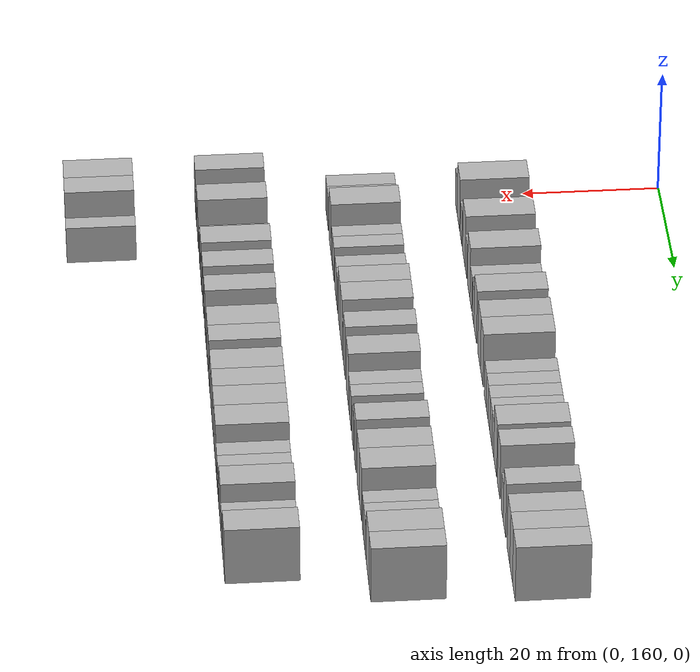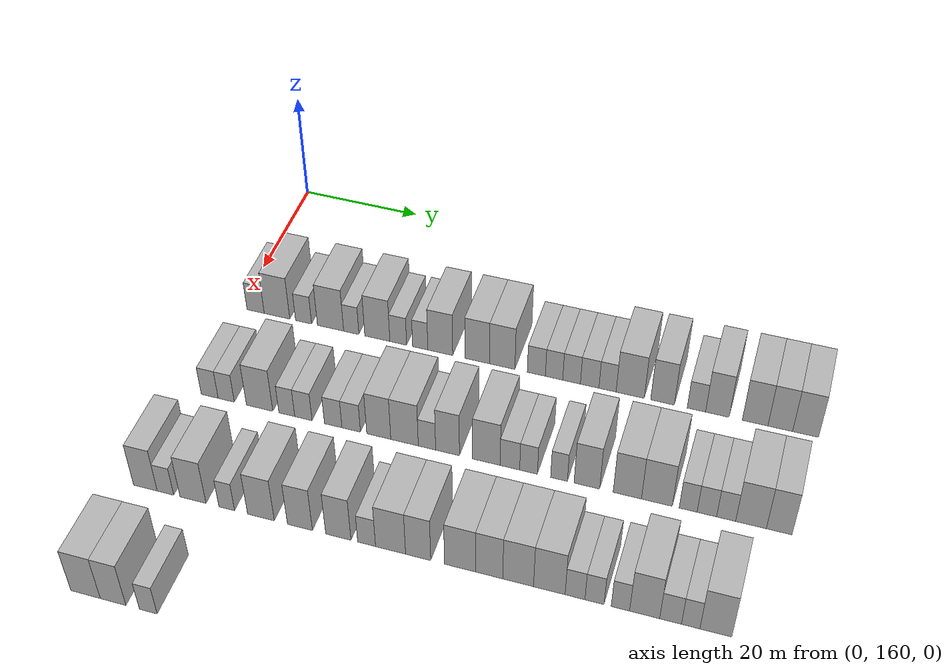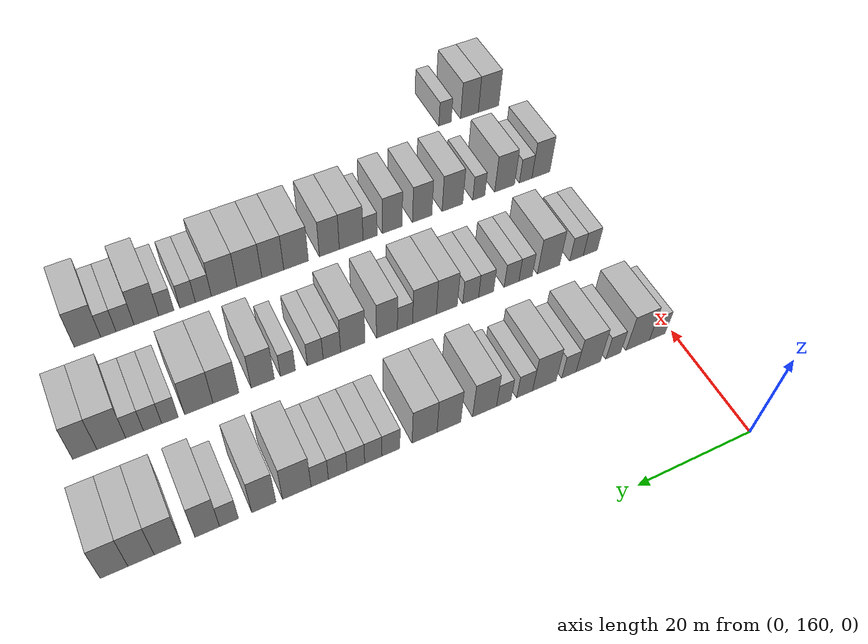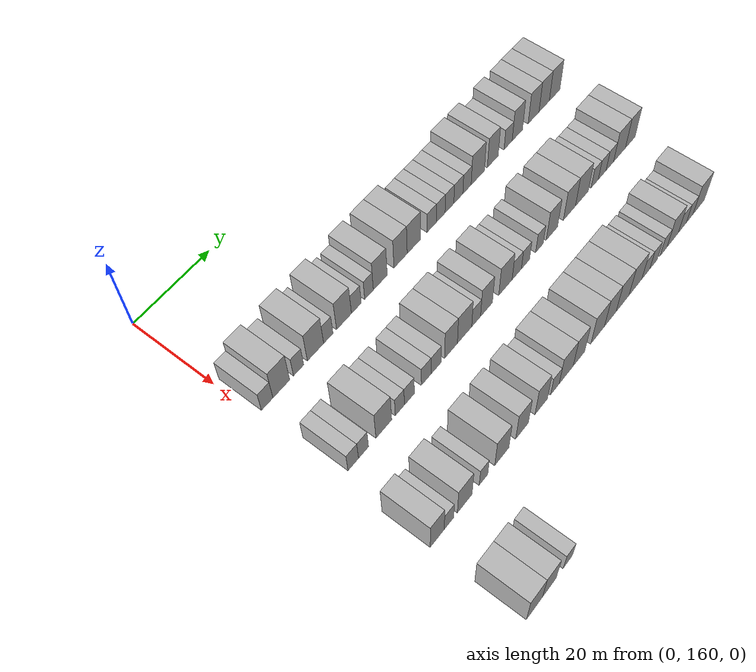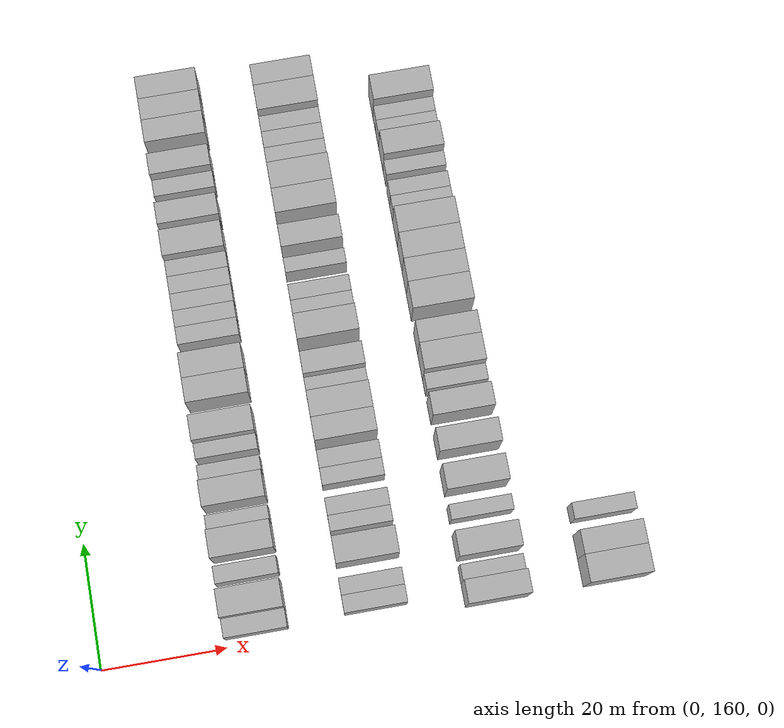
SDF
<sdf version="1.6">
 <world name="default">
  <model name="building_131">
   <static>1</static>
   <pose>25.0000 162.7813 0 0.000000 0.000000 0.000000</pose>
   <link name="link">
    <pose>0 0 3.00 0 0 0</pose>
    <collision name="collision"><geometry><box><size>10.0000 2.9976 6.0000</size></box></geometry></collision>
    <visual name="visual">
     <cast_shadows>0</cast_shadows>
     <geometry><box><size>10.0000 2.9976 6.0000</size></box></geometry>
     <material>
      <script>
       <uri>model://HANNAS_wall/materials/scripts</uri>
       <uri>model://HANNAS_wall/materials/textures</uri>
       <name>vrc/HANNAS_wall</name>
      </script>
     </material>
    </visual>
   </link>
  </model>
  <model name="building_132">
   <static>1</static>
   <pose>25.0000 166.4922 0 0.000000 0.000000 0.000000</pose>
   <link name="link">
    <pose>0 0 4.50 0 0 0</pose>
    <collision name="collision"><geometry><box><size>10.0000 4.4241 9.0000</size></box></geometry></collision>
    <visual name="visual">
     <cast_shadows>0</cast_shadows>
     <geometry><box><size>10.0000 4.4241 9.0000</size></box></geometry>
     <material>
      <script>
       <uri>model://HANNAS_wall/materials/scripts</uri>
       <uri>model://HANNAS_wall/materials/textures</uri>
       <name>vrc/HANNAS_wall</name>
      </script>
     </material>
    </visual>
   </link>
  </model>
  <model name="building_133">
   <static>1</static>
   <pose>25.0000 171.0801 0 0.000000 0.000000 0.000000</pose>
   <link name="link">
    <pose>0 0 3.00 0 0 0</pose>
    <collision name="collision"><geometry><box><size>10.0000 2.7517 6.0000</size></box></geometry></collision>
    <visual name="visual">
     <cast_shadows>0</cast_shadows>
     <geometry><box><size>10.0000 2.7517 6.0000</size></box></geometry>
     <material>
      <script>
       <uri>model://HANNAS_wall/materials/scripts</uri>
       <uri>model://HANNAS_wall/materials/textures</uri>
       <name>vrc/HANNAS_wall</name>
      </script>
     </material>
    </visual>
   </link>
  </model>
  <model name="building_134">
   <static>1</static>
   <pose>25.0000 175.6868 0 0.000000 0.000000 0.000000</pose>
   <link name="link">
    <pose>0 0 4.50 0 0 0</pose>
    <collision name="collision"><geometry><box><size>10.0000 4.4618 9.0000</size></box></geometry></collision>
    <visual name="visual">
     <cast_shadows>0</cast_shadows>
     <geometry><box><size>10.0000 4.4618 9.0000</size></box></geometry>
     <material>
      <script>
       <uri>model://HANNAS_wall/materials/scripts</uri>
       <uri>model://HANNAS_wall/materials/textures</uri>
       <name>vrc/HANNAS_wall</name>
      </script>
     </material>
    </visual>
   </link>
  </model>
  <model name="building_135">
   <static>1</static>
   <pose>25.0000 179.2139 0 0.000000 0.000000 0.000000</pose>
   <link name="link">
    <pose>0 0 3.00 0 0 0</pose>
    <collision name="collision"><geometry><box><size>10.0000 2.5924 6.0000</size></box></geometry></collision>
    <visual name="visual">
     <cast_shadows>0</cast_shadows>
     <geometry><box><size>10.0000 2.5924 6.0000</size></box></geometry>
     <material>
      <script>
       <uri>model://HANNAS_wall/materials/scripts</uri>
       <uri>model://HANNAS_wall/materials/textures</uri>
       <name>vrc/HANNAS_wall</name>
      </script>
     </material>
    </visual>
   </link>
  </model>
  <model name="building_136">
   <static>1</static>
   <pose>25.0000 183.6178 0 0.000000 0.000000 0.000000</pose>
   <link name="link">
    <pose>0 0 4.50 0 0 0</pose>
    <collision name="collision"><geometry><box><size>10.0000 4.2154 9.0000</size></box></geometry></collision>
    <visual name="visual">
     <cast_shadows>0</cast_shadows>
     <geometry><box><size>10.0000 4.2154 9.0000</size></box></geometry>
     <material>
      <script>
       <uri>model://HANNAS_wall/materials/scripts</uri>
       <uri>model://HANNAS_wall/materials/textures</uri>
       <name>vrc/HANNAS_wall</name>
      </script>
     </material>
    </visual>
   </link>
  </model>
  <model name="building_137">
   <static>1</static>
   <pose>25.0000 187.1260 0 0.000000 0.000000 0.000000</pose>
   <link name="link">
    <pose>0 0 3.00 0 0 0</pose>
    <collision name="collision"><geometry><box><size>10.0000 2.8010 6.0000</size></box></geometry></collision>
    <visual name="visual">
     <cast_shadows>0</cast_shadows>
     <geometry><box><size>10.0000 2.8010 6.0000</size></box></geometry>
     <material>
      <script>
       <uri>model://HANNAS_wall/materials/scripts</uri>
       <uri>model://HANNAS_wall/materials/textures</uri>
       <name>vrc/HANNAS_wall</name>
      </script>
     </material>
    </visual>
   </link>
  </model>
  <model name="building_138">
   <static>1</static>
   <pose>25.0000 190.7882 0 0.000000 0.000000 0.000000</pose>
   <link name="link">
    <pose>0 0 3.00 0 0 0</pose>
    <collision name="collision"><geometry><box><size>10.0000 2.5234 6.0000</size></box></geometry></collision>
    <visual name="visual">
     <cast_shadows>0</cast_shadows>
     <geometry><box><size>10.0000 2.5234 6.0000</size></box></geometry>
     <material>
      <script>
       <uri>model://HANNAS_wall/materials/scripts</uri>
       <uri>model://HANNAS_wall/materials/textures</uri>
       <name>vrc/HANNAS_wall</name>
      </script>
     </material>
    </visual>
   </link>
  </model>
  <model name="building_139">
   <static>1</static>
   <pose>25.0000 194.1031 0 0.000000 0.000000 0.000000</pose>
   <link name="link">
    <pose>0 0 4.50 0 0 0</pose>
    <collision name="collision"><geometry><box><size>10.0000 4.1064 9.0000</size></box></geometry></collision>
    <visual name="visual">
     <cast_shadows>0</cast_shadows>
     <geometry><box><size>10.0000 4.1064 9.0000</size></box></geometry>
     <material>
      <script>
       <uri>model://HANNAS_wall/materials/scripts</uri>
       <uri>model://HANNAS_wall/materials/textures</uri>
       <name>vrc/HANNAS_wall</name>
      </script>
     </material>
    </visual>
   </link>
  </model>
  <model name="building_140">
   <static>1</static>
   <pose>25.0000 200.1590 0 0.000000 0.000000 0.000000</pose>
   <link name="link">
    <pose>0 0 4.50 0 0 0</pose>
    <collision name="collision"><geometry><box><size>10.0000 4.0054 9.0000</size></box></geometry></collision>
    <visual name="visual">
     <cast_shadows>0</cast_shadows>
     <geometry><box><size>10.0000 4.0054 9.0000</size></box></geometry>
     <material>
      <script>
       <uri>model://HANNAS_wall/materials/scripts</uri>
       <uri>model://HANNAS_wall/materials/textures</uri>
       <name>vrc/HANNAS_wall</name>
      </script>
     </material>
    </visual>
   </link>
  </model>
  <model name="building_141">
   <static>1</static>
   <pose>25.0000 204.2304 0 0.000000 0.000000 0.000000</pose>
   <link name="link">
    <pose>0 0 4.50 0 0 0</pose>
    <collision name="collision"><geometry><box><size>10.0000 4.1374 9.0000</size></box></geometry></collision>
    <visual name="visual">
     <cast_shadows>0</cast_shadows>
     <geometry><box><size>10.0000 4.1374 9.0000</size></box></geometry>
     <material>
      <script>
       <uri>model://HANNAS_wall/materials/scripts</uri>
       <uri>model://HANNAS_wall/materials/textures</uri>
       <name>vrc/HANNAS_wall</name>
      </script>
     </material>
    </visual>
   </link>
  </model>
  <model name="building_142">
   <static>1</static>
   <pose>25.0000 209.7519 0 0.000000 0.000000 0.000000</pose>
   <link name="link">
    <pose>0 0 3.00 0 0 0</pose>
    <collision name="collision"><geometry><box><size>10.0000 2.9057 6.0000</size></box></geometry></collision>
    <visual name="visual">
     <cast_shadows>0</cast_shadows>
     <geometry><box><size>10.0000 2.9057 6.0000</size></box></geometry>
     <material>
      <script>
       <uri>model://HANNAS_wall/materials/scripts</uri>
       <uri>model://HANNAS_wall/materials/textures</uri>
       <name>vrc/HANNAS_wall</name>
      </script>
     </material>
    </visual>
   </link>
  </model>
  <model name="building_143">
   <static>1</static>
   <pose>25.0000 212.5921 0 0.000000 0.000000 0.000000</pose>
   <link name="link">
    <pose>0 0 3.00 0 0 0</pose>
    <collision name="collision"><geometry><box><size>10.0000 2.7747 6.0000</size></box></geometry></collision>
    <visual name="visual">
     <cast_shadows>0</cast_shadows>
     <geometry><box><size>10.0000 2.7747 6.0000</size></box></geometry>
     <material>
      <script>
       <uri>model://HANNAS_wall/materials/scripts</uri>
       <uri>model://HANNAS_wall/materials/textures</uri>
       <name>vrc/HANNAS_wall</name>
      </script>
     </material>
    </visual>
   </link>
  </model>
  <model name="building_144">
   <static>1</static>
   <pose>25.0000 215.3852 0 0.000000 0.000000 0.000000</pose>
   <link name="link">
    <pose>0 0 3.00 0 0 0</pose>
    <collision name="collision"><geometry><box><size>10.0000 2.8116 6.0000</size></box></geometry></collision>
    <visual name="visual">
     <cast_shadows>0</cast_shadows>
     <geometry><box><size>10.0000 2.8116 6.0000</size></box></geometry>
     <material>
      <script>
       <uri>model://HANNAS_wall/materials/scripts</uri>
       <uri>model://HANNAS_wall/materials/textures</uri>
       <name>vrc/HANNAS_wall</name>
      </script>
     </material>
    </visual>
   </link>
  </model>
  <model name="building_145">
   <static>1</static>
   <pose>25.0000 218.2593 0 0.000000 0.000000 0.000000</pose>
   <link name="link">
    <pose>0 0 3.00 0 0 0</pose>
    <collision name="collision"><geometry><box><size>10.0000 2.9365 6.0000</size></box></geometry></collision>
    <visual name="visual">
     <cast_shadows>0</cast_shadows>
     <geometry><box><size>10.0000 2.9365 6.0000</size></box></geometry>
     <material>
      <script>
       <uri>model://HANNAS_wall/materials/scripts</uri>
       <uri>model://HANNAS_wall/materials/textures</uri>
       <name>vrc/HANNAS_wall</name>
      </script>
     </material>
    </visual>
   </link>
  </model>
  <model name="building_146">
   <static>1</static>
   <pose>25.0000 221.0781 0 0.000000 0.000000 0.000000</pose>
   <link name="link">
    <pose>0 0 3.00 0 0 0</pose>
    <collision name="collision"><geometry><box><size>10.0000 2.7011 6.0000</size></box></geometry></collision>
    <visual name="visual">
     <cast_shadows>0</cast_shadows>
     <geometry><box><size>10.0000 2.7011 6.0000</size></box></geometry>
     <material>
      <script>
       <uri>model://HANNAS_wall/materials/scripts</uri>
       <uri>model://HANNAS_wall/materials/textures</uri>
       <name>vrc/HANNAS_wall</name>
      </script>
     </material>
    </visual>
   </link>
  </model>
  <model name="building_147">
   <static>1</static>
   <pose>25.0000 224.6262 0 0.000000 0.000000 0.000000</pose>
   <link name="link">
    <pose>0 0 4.50 0 0 0</pose>
    <collision name="collision"><geometry><box><size>10.0000 4.3952 9.0000</size></box></geometry></collision>
    <visual name="visual">
     <cast_shadows>0</cast_shadows>
     <geometry><box><size>10.0000 4.3952 9.0000</size></box></geometry>
     <material>
      <script>
       <uri>model://HANNAS_wall/materials/scripts</uri>
       <uri>model://HANNAS_wall/materials/textures</uri>
       <name>vrc/HANNAS_wall</name>
      </script>
     </material>
    </visual>
   </link>
  </model>
  <model name="building_148">
   <static>1</static>
   <pose>25.0000 229.6574 0 0.000000 0.000000 0.000000</pose>
   <link name="link">
    <pose>0 0 4.50 0 0 0</pose>
    <collision name="collision"><geometry><box><size>10.0000 3.6674 9.0000</size></box></geometry></collision>
    <visual name="visual">
     <cast_shadows>0</cast_shadows>
     <geometry><box><size>10.0000 3.6674 9.0000</size></box></geometry>
     <material>
      <script>
       <uri>model://HANNAS_wall/materials/scripts</uri>
       <uri>model://HANNAS_wall/materials/textures</uri>
       <name>vrc/HANNAS_wall</name>
      </script>
     </material>
    </visual>
   </link>
  </model>
  <model name="building_149">
   <static>1</static>
   <pose>25.0000 234.8963 0 0.000000 0.000000 0.000000</pose>
   <link name="link">
    <pose>0 0 3.00 0 0 0</pose>
    <collision name="collision"><geometry><box><size>10.0000 2.8103 6.0000</size></box></geometry></collision>
    <visual name="visual">
     <cast_shadows>0</cast_shadows>
     <geometry><box><size>10.0000 2.8103 6.0000</size></box></geometry>
     <material>
      <script>
       <uri>model://HANNAS_wall/materials/scripts</uri>
       <uri>model://HANNAS_wall/materials/textures</uri>
       <name>vrc/HANNAS_wall</name>
      </script>
     </material>
    </visual>
   </link>
  </model>
  <model name="building_150">
   <static>1</static>
   <pose>25.0000 238.1025 0 0.000000 0.000000 0.000000</pose>
   <link name="link">
    <pose>0 0 4.50 0 0 0</pose>
    <collision name="collision"><geometry><box><size>10.0000 3.6022 9.0000</size></box></geometry></collision>
    <visual name="visual">
     <cast_shadows>0</cast_shadows>
     <geometry><box><size>10.0000 3.6022 9.0000</size></box></geometry>
     <material>
      <script>
       <uri>model://HANNAS_wall/materials/scripts</uri>
       <uri>model://HANNAS_wall/materials/textures</uri>
       <name>vrc/HANNAS_wall</name>
      </script>
     </material>
    </visual>
   </link>
  </model>
  <model name="building_151">
   <static>1</static>
   <pose>25.0000 243.8329 0 0.000000 0.000000 0.000000</pose>
   <link name="link">
    <pose>0 0 4.50 0 0 0</pose>
    <collision name="collision"><geometry><box><size>10.0000 3.8587 9.0000</size></box></geometry></collision>
    <visual name="visual">
     <cast_shadows>0</cast_shadows>
     <geometry><box><size>10.0000 3.8587 9.0000</size></box></geometry>
     <material>
      <script>
       <uri>model://HANNAS_wall/materials/scripts</uri>
       <uri>model://HANNAS_wall/materials/textures</uri>
       <name>vrc/HANNAS_wall</name>
      </script>
     </material>
    </visual>
   </link>
  </model>
  <model name="building_152">
   <static>1</static>
   <pose>25.0000 247.6191 0 0.000000 0.000000 0.000000</pose>
   <link name="link">
    <pose>0 0 4.50 0 0 0</pose>
    <collision name="collision"><geometry><box><size>10.0000 3.7137 9.0000</size></box></geometry></collision>
    <visual name="visual">
     <cast_shadows>0</cast_shadows>
     <geometry><box><size>10.0000 3.7137 9.0000</size></box></geometry>
     <material>
      <script>
       <uri>model://HANNAS_wall/materials/scripts</uri>
       <uri>model://HANNAS_wall/materials/textures</uri>
       <name>vrc/HANNAS_wall</name>
      </script>
     </material>
    </visual>
   </link>
  </model>
  <model name="building_153">
   <static>1</static>
   <pose>25.0000 251.4085 0 0.000000 0.000000 0.000000</pose>
   <link name="link">
    <pose>0 0 4.50 0 0 0</pose>
    <collision name="collision"><geometry><box><size>10.0000 3.8651 9.0000</size></box></geometry></collision>
    <visual name="visual">
     <cast_shadows>0</cast_shadows>
     <geometry><box><size>10.0000 3.8651 9.0000</size></box></geometry>
     <material>
      <script>
       <uri>model://HANNAS_wall/materials/scripts</uri>
       <uri>model://HANNAS_wall/materials/textures</uri>
       <name>vrc/HANNAS_wall</name>
      </script>
     </material>
    </visual>
   </link>
  </model>
  <model name="building_298">
   <static>1</static>
   <pose>44.0000 163.1957 0 0.000000 0.000000 0.000000</pose>
   <link name="link">
    <pose>0 0 3.00 0 0 0</pose>
    <collision name="collision"><geometry><box><size>10.0000 2.7887 6.0000</size></box></geometry></collision>
    <visual name="visual">
     <cast_shadows>0</cast_shadows>
     <geometry><box><size>10.0000 2.7887 6.0000</size></box></geometry>
     <material>
      <script>
       <uri>model://HANNAS_wall/materials/scripts</uri>
       <uri>model://HANNAS_wall/materials/textures</uri>
       <name>vrc/HANNAS_wall</name>
      </script>
     </material>
    </visual>
   </link>
  </model>
  <model name="building_299">
   <static>1</static>
   <pose>44.0000 165.9279 0 0.000000 0.000000 0.000000</pose>
   <link name="link">
    <pose>0 0 3.00 0 0 0</pose>
    <collision name="collision"><geometry><box><size>10.0000 2.6757 6.0000</size></box></geometry></collision>
    <visual name="visual">
     <cast_shadows>0</cast_shadows>
     <geometry><box><size>10.0000 2.6757 6.0000</size></box></geometry>
     <material>
      <script>
       <uri>model://HANNAS_wall/materials/scripts</uri>
       <uri>model://HANNAS_wall/materials/textures</uri>
       <name>vrc/HANNAS_wall</name>
      </script>
     </material>
    </visual>
   </link>
  </model>
  <model name="building_300">
   <static>1</static>
   <pose>44.0000 171.4238 0 0.000000 0.000000 0.000000</pose>
   <link name="link">
    <pose>0 0 4.50 0 0 0</pose>
    <collision name="collision"><geometry><box><size>10.0000 4.3161 9.0000</size></box></geometry></collision>
    <visual name="visual">
     <cast_shadows>0</cast_shadows>
     <geometry><box><size>10.0000 4.3161 9.0000</size></box></geometry>
     <material>
      <script>
       <uri>model://HANNAS_wall/materials/scripts</uri>
       <uri>model://HANNAS_wall/materials/textures</uri>
       <name>vrc/HANNAS_wall</name>
      </script>
     </material>
    </visual>
   </link>
  </model>
  <model name="building_301">
   <static>1</static>
   <pose>44.0000 175.8638 0 0.000000 0.000000 0.000000</pose>
   <link name="link">
    <pose>0 0 3.00 0 0 0</pose>
    <collision name="collision"><geometry><box><size>10.0000 2.5638 6.0000</size></box></geometry></collision>
    <visual name="visual">
     <cast_shadows>0</cast_shadows>
     <geometry><box><size>10.0000 2.5638 6.0000</size></box></geometry>
     <material>
      <script>
       <uri>model://HANNAS_wall/materials/scripts</uri>
       <uri>model://HANNAS_wall/materials/textures</uri>
       <name>vrc/HANNAS_wall</name>
      </script>
     </material>
    </visual>
   </link>
  </model>
  <model name="building_302">
   <static>1</static>
   <pose>44.0000 178.5440 0 0.000000 0.000000 0.000000</pose>
   <link name="link">
    <pose>0 0 3.00 0 0 0</pose>
    <collision name="collision"><geometry><box><size>10.0000 2.7967 6.0000</size></box></geometry></collision>
    <visual name="visual">
     <cast_shadows>0</cast_shadows>
     <geometry><box><size>10.0000 2.7967 6.0000</size></box></geometry>
     <material>
      <script>
       <uri>model://HANNAS_wall/materials/scripts</uri>
       <uri>model://HANNAS_wall/materials/textures</uri>
       <name>vrc/HANNAS_wall</name>
      </script>
     </material>
    </visual>
   </link>
  </model>
  <model name="building_303">
   <static>1</static>
   <pose>44.0000 183.3404 0 0.000000 0.000000 0.000000</pose>
   <link name="link">
    <pose>0 0 3.00 0 0 0</pose>
    <collision name="collision"><geometry><box><size>10.0000 2.7961 6.0000</size></box></geometry></collision>
    <visual name="visual">
     <cast_shadows>0</cast_shadows>
     <geometry><box><size>10.0000 2.7961 6.0000</size></box></geometry>
     <material>
      <script>
       <uri>model://HANNAS_wall/materials/scripts</uri>
       <uri>model://HANNAS_wall/materials/textures</uri>
       <name>vrc/HANNAS_wall</name>
      </script>
     </material>
    </visual>
   </link>
  </model>
  <model name="building_304">
   <static>1</static>
   <pose>44.0000 186.2108 0 0.000000 0.000000 0.000000</pose>
   <link name="link">
    <pose>0 0 3.00 0 0 0</pose>
    <collision name="collision"><geometry><box><size>10.0000 2.9447 6.0000</size></box></geometry></collision>
    <visual name="visual">
     <cast_shadows>0</cast_shadows>
     <geometry><box><size>10.0000 2.9447 6.0000</size></box></geometry>
     <material>
      <script>
       <uri>model://HANNAS_wall/materials/scripts</uri>
       <uri>model://HANNAS_wall/materials/textures</uri>
       <name>vrc/HANNAS_wall</name>
      </script>
     </material>
    </visual>
   </link>
  </model>
  <model name="building_305">
   <static>1</static>
   <pose>44.0000 190.5857 0 0.000000 0.000000 0.000000</pose>
   <link name="link">
    <pose>0 0 4.50 0 0 0</pose>
    <collision name="collision"><geometry><box><size>10.0000 3.8052 9.0000</size></box></geometry></collision>
    <visual name="visual">
     <cast_shadows>0</cast_shadows>
     <geometry><box><size>10.0000 3.8052 9.0000</size></box></geometry>
     <material>
      <script>
       <uri>model://HANNAS_wall/materials/scripts</uri>
       <uri>model://HANNAS_wall/materials/textures</uri>
       <name>vrc/HANNAS_wall</name>
      </script>
     </material>
    </visual>
   </link>
  </model>
  <model name="building_306">
   <static>1</static>
   <pose>44.0000 194.6431 0 0.000000 0.000000 0.000000</pose>
   <link name="link">
    <pose>0 0 4.50 0 0 0</pose>
    <collision name="collision"><geometry><box><size>10.0000 4.3095 9.0000</size></box></geometry></collision>
    <visual name="visual">
     <cast_shadows>0</cast_shadows>
     <geometry><box><size>10.0000 4.3095 9.0000</size></box></geometry>
     <material>
      <script>
       <uri>model://HANNAS_wall/materials/scripts</uri>
       <uri>model://HANNAS_wall/materials/textures</uri>
       <name>vrc/HANNAS_wall</name>
      </script>
     </material>
    </visual>
   </link>
  </model>
  <model name="building_307">
   <static>1</static>
   <pose>44.0000 198.1488 0 0.000000 0.000000 0.000000</pose>
   <link name="link">
    <pose>0 0 3.00 0 0 0</pose>
    <collision name="collision"><geometry><box><size>10.0000 2.7019 6.0000</size></box></geometry></collision>
    <visual name="visual">
     <cast_shadows>0</cast_shadows>
     <geometry><box><size>10.0000 2.7019 6.0000</size></box></geometry>
     <material>
      <script>
       <uri>model://HANNAS_wall/materials/scripts</uri>
       <uri>model://HANNAS_wall/materials/textures</uri>
       <name>vrc/HANNAS_wall</name>
      </script>
     </material>
    </visual>
   </link>
  </model>
  <model name="building_308">
   <static>1</static>
   <pose>44.0000 201.3424 0 0.000000 0.000000 0.000000</pose>
   <link name="link">
    <pose>0 0 4.50 0 0 0</pose>
    <collision name="collision"><geometry><box><size>10.0000 3.6854 9.0000</size></box></geometry></collision>
    <visual name="visual">
     <cast_shadows>0</cast_shadows>
     <geometry><box><size>10.0000 3.6854 9.0000</size></box></geometry>
     <material>
      <script>
       <uri>model://HANNAS_wall/materials/scripts</uri>
       <uri>model://HANNAS_wall/materials/textures</uri>
       <name>vrc/HANNAS_wall</name>
      </script>
     </material>
    </visual>
   </link>
  </model>
  <model name="building_309">
   <static>1</static>
   <pose>44.0000 207.3023 0 0.000000 0.000000 0.000000</pose>
   <link name="link">
    <pose>0 0 4.50 0 0 0</pose>
    <collision name="collision"><geometry><box><size>10.0000 4.2344 9.0000</size></box></geometry></collision>
    <visual name="visual">
     <cast_shadows>0</cast_shadows>
     <geometry><box><size>10.0000 4.2344 9.0000</size></box></geometry>
     <material>
      <script>
       <uri>model://HANNAS_wall/materials/scripts</uri>
       <uri>model://HANNAS_wall/materials/textures</uri>
       <name>vrc/HANNAS_wall</name>
      </script>
     </material>
    </visual>
   </link>
  </model>
  <model name="building_310">
   <static>1</static>
   <pose>44.0000 210.9108 0 0.000000 0.000000 0.000000</pose>
   <link name="link">
    <pose>0 0 3.00 0 0 0</pose>
    <collision name="collision"><geometry><box><size>10.0000 2.9826 6.0000</size></box></geometry></collision>
    <visual name="visual">
     <cast_shadows>0</cast_shadows>
     <geometry><box><size>10.0000 2.9826 6.0000</size></box></geometry>
     <material>
      <script>
       <uri>model://HANNAS_wall/materials/scripts</uri>
       <uri>model://HANNAS_wall/materials/textures</uri>
       <name>vrc/HANNAS_wall</name>
      </script>
     </material>
    </visual>
   </link>
  </model>
  <model name="building_311">
   <static>1</static>
   <pose>44.0000 213.7410 0 0.000000 0.000000 0.000000</pose>
   <link name="link">
    <pose>0 0 3.00 0 0 0</pose>
    <collision name="collision"><geometry><box><size>10.0000 2.6779 6.0000</size></box></geometry></collision>
    <visual name="visual">
     <cast_shadows>0</cast_shadows>
     <geometry><box><size>10.0000 2.6779 6.0000</size></box></geometry>
     <material>
      <script>
       <uri>model://HANNAS_wall/materials/scripts</uri>
       <uri>model://HANNAS_wall/materials/textures</uri>
       <name>vrc/HANNAS_wall</name>
      </script>
     </material>
    </visual>
   </link>
  </model>
  <model name="building_312">
   <static>1</static>
   <pose>44.0000 218.3348 0 0.000000 0.000000 0.000000</pose>
   <link name="link">
    <pose>0 0 3.00 0 0 0</pose>
    <collision name="collision"><geometry><box><size>10.0000 2.5097 6.0000</size></box></geometry></collision>
    <visual name="visual">
     <cast_shadows>0</cast_shadows>
     <geometry><box><size>10.0000 2.5097 6.0000</size></box></geometry>
     <material>
      <script>
       <uri>model://HANNAS_wall/materials/scripts</uri>
       <uri>model://HANNAS_wall/materials/textures</uri>
       <name>vrc/HANNAS_wall</name>
      </script>
     </material>
    </visual>
   </link>
  </model>
  <model name="building_313">
   <static>1</static>
   <pose>44.0000 222.4960 0 0.000000 0.000000 0.000000</pose>
   <link name="link">
    <pose>0 0 4.50 0 0 0</pose>
    <collision name="collision"><geometry><box><size>10.0000 3.8126 9.0000</size></box></geometry></collision>
    <visual name="visual">
     <cast_shadows>0</cast_shadows>
     <geometry><box><size>10.0000 3.8126 9.0000</size></box></geometry>
     <material>
      <script>
       <uri>model://HANNAS_wall/materials/scripts</uri>
       <uri>model://HANNAS_wall/materials/textures</uri>
       <name>vrc/HANNAS_wall</name>
      </script>
     </material>
    </visual>
   </link>
  </model>
  <model name="building_314">
   <static>1</static>
   <pose>44.0000 228.4842 0 0.000000 0.000000 0.000000</pose>
   <link name="link">
    <pose>0 0 4.50 0 0 0</pose>
    <collision name="collision"><geometry><box><size>10.0000 4.1638 9.0000</size></box></geometry></collision>
    <visual name="visual">
     <cast_shadows>0</cast_shadows>
     <geometry><box><size>10.0000 4.1638 9.0000</size></box></geometry>
     <material>
      <script>
       <uri>model://HANNAS_wall/materials/scripts</uri>
       <uri>model://HANNAS_wall/materials/textures</uri>
       <name>vrc/HANNAS_wall</name>
      </script>
     </material>
    </visual>
   </link>
  </model>
  <model name="building_315">
   <static>1</static>
   <pose>44.0000 232.8150 0 0.000000 0.000000 0.000000</pose>
   <link name="link">
    <pose>0 0 4.50 0 0 0</pose>
    <collision name="collision"><geometry><box><size>10.0000 4.4979 9.0000</size></box></geometry></collision>
    <visual name="visual">
     <cast_shadows>0</cast_shadows>
     <geometry><box><size>10.0000 4.4979 9.0000</size></box></geometry>
     <material>
      <script>
       <uri>model://HANNAS_wall/materials/scripts</uri>
       <uri>model://HANNAS_wall/materials/textures</uri>
       <name>vrc/HANNAS_wall</name>
      </script>
     </material>
    </visual>
   </link>
  </model>
  <model name="building_316">
   <static>1</static>
   <pose>44.0000 237.3608 0 0.000000 0.000000 0.000000</pose>
   <link name="link">
    <pose>0 0 3.00 0 0 0</pose>
    <collision name="collision"><geometry><box><size>10.0000 2.5938 6.0000</size></box></geometry></collision>
    <visual name="visual">
     <cast_shadows>0</cast_shadows>
     <geometry><box><size>10.0000 2.5938 6.0000</size></box></geometry>
     <material>
      <script>
       <uri>model://HANNAS_wall/materials/scripts</uri>
       <uri>model://HANNAS_wall/materials/textures</uri>
       <name>vrc/HANNAS_wall</name>
      </script>
     </material>
    </visual>
   </link>
  </model>
  <model name="building_317">
   <static>1</static>
   <pose>44.0000 240.0627 0 0.000000 0.000000 0.000000</pose>
   <link name="link">
    <pose>0 0 3.00 0 0 0</pose>
    <collision name="collision"><geometry><box><size>10.0000 2.8099 6.0000</size></box></geometry></collision>
    <visual name="visual">
     <cast_shadows>0</cast_shadows>
     <geometry><box><size>10.0000 2.8099 6.0000</size></box></geometry>
     <material>
      <script>
       <uri>model://HANNAS_wall/materials/scripts</uri>
       <uri>model://HANNAS_wall/materials/textures</uri>
       <name>vrc/HANNAS_wall</name>
      </script>
     </material>
    </visual>
   </link>
  </model>
  <model name="building_318">
   <static>1</static>
   <pose>44.0000 242.8304 0 0.000000 0.000000 0.000000</pose>
   <link name="link">
    <pose>0 0 3.00 0 0 0</pose>
    <collision name="collision"><geometry><box><size>10.0000 2.7255 6.0000</size></box></geometry></collision>
    <visual name="visual">
     <cast_shadows>0</cast_shadows>
     <geometry><box><size>10.0000 2.7255 6.0000</size></box></geometry>
     <material>
      <script>
       <uri>model://HANNAS_wall/materials/scripts</uri>
       <uri>model://HANNAS_wall/materials/textures</uri>
       <name>vrc/HANNAS_wall</name>
      </script>
     </material>
    </visual>
   </link>
  </model>
  <model name="building_319">
   <static>1</static>
   <pose>44.0000 246.3780 0 0.000000 0.000000 0.000000</pose>
   <link name="link">
    <pose>0 0 4.50 0 0 0</pose>
    <collision name="collision"><geometry><box><size>10.0000 4.3696 9.0000</size></box></geometry></collision>
    <visual name="visual">
     <cast_shadows>0</cast_shadows>
     <geometry><box><size>10.0000 4.3696 9.0000</size></box></geometry>
     <material>
      <script>
       <uri>model://HANNAS_wall/materials/scripts</uri>
       <uri>model://HANNAS_wall/materials/textures</uri>
       <name>vrc/HANNAS_wall</name>
      </script>
     </material>
    </visual>
   </link>
  </model>
  <model name="building_320">
   <static>1</static>
   <pose>44.0000 250.3717 0 0.000000 0.000000 0.000000</pose>
   <link name="link">
    <pose>0 0 4.50 0 0 0</pose>
    <collision name="collision"><geometry><box><size>10.0000 3.6177 9.0000</size></box></geometry></collision>
    <visual name="visual">
     <cast_shadows>0</cast_shadows>
     <geometry><box><size>10.0000 3.6177 9.0000</size></box></geometry>
     <material>
      <script>
       <uri>model://HANNAS_wall/materials/scripts</uri>
       <uri>model://HANNAS_wall/materials/textures</uri>
       <name>vrc/HANNAS_wall</name>
      </script>
     </material>
    </visual>
   </link>
  </model>
  <model name="building_478">
   <static>1</static>
   <pose>63.0000 161.5643 0 0.000000 0.000000 0.000000</pose>
   <link name="link">
    <pose>0 0 4.50 0 0 0</pose>
    <collision name="collision"><geometry><box><size>10.0000 3.7421 9.0000</size></box></geometry></collision>
    <visual name="visual">
     <cast_shadows>0</cast_shadows>
     <geometry><box><size>10.0000 3.7421 9.0000</size></box></geometry>
     <material>
      <script>
       <uri>model://HANNAS_wall/materials/scripts</uri>
       <uri>model://HANNAS_wall/materials/textures</uri>
       <name>vrc/HANNAS_wall</name>
      </script>
     </material>
    </visual>
   </link>
  </model>
  <model name="building_479">
   <static>1</static>
   <pose>63.0000 164.7354 0 0.000000 0.000000 0.000000</pose>
   <link name="link">
    <pose>0 0 3.00 0 0 0</pose>
    <collision name="collision"><geometry><box><size>10.0000 2.6002 6.0000</size></box></geometry></collision>
    <visual name="visual">
     <cast_shadows>0</cast_shadows>
     <geometry><box><size>10.0000 2.6002 6.0000</size></box></geometry>
     <material>
      <script>
       <uri>model://HANNAS_wall/materials/scripts</uri>
       <uri>model://HANNAS_wall/materials/textures</uri>
       <name>vrc/HANNAS_wall</name>
      </script>
     </material>
    </visual>
   </link>
  </model>
  <model name="building_480">
   <static>1</static>
   <pose>63.0000 169.0671 0 0.000000 0.000000 0.000000</pose>
   <link name="link">
    <pose>0 0 4.50 0 0 0</pose>
    <collision name="collision"><geometry><box><size>10.0000 4.0632 9.0000</size></box></geometry></collision>
    <visual name="visual">
     <cast_shadows>0</cast_shadows>
     <geometry><box><size>10.0000 4.0632 9.0000</size></box></geometry>
     <material>
      <script>
       <uri>model://HANNAS_wall/materials/scripts</uri>
       <uri>model://HANNAS_wall/materials/textures</uri>
       <name>vrc/HANNAS_wall</name>
      </script>
     </material>
    </visual>
   </link>
  </model>
  <model name="building_481">
   <static>1</static>
   <pose>63.0000 174.3144 0 0.000000 0.000000 0.000000</pose>
   <link name="link">
    <pose>0 0 3.00 0 0 0</pose>
    <collision name="collision"><geometry><box><size>10.0000 2.4313 6.0000</size></box></geometry></collision>
    <visual name="visual">
     <cast_shadows>0</cast_shadows>
     <geometry><box><size>10.0000 2.4313 6.0000</size></box></geometry>
     <material>
      <script>
       <uri>model://HANNAS_wall/materials/scripts</uri>
       <uri>model://HANNAS_wall/materials/textures</uri>
       <name>vrc/HANNAS_wall</name>
      </script>
     </material>
    </visual>
   </link>
  </model>
  <model name="building_482">
   <static>1</static>
   <pose>63.0000 179.5796 0 0.000000 0.000000 0.000000</pose>
   <link name="link">
    <pose>0 0 4.50 0 0 0</pose>
    <collision name="collision"><geometry><box><size>10.0000 4.0991 9.0000</size></box></geometry></collision>
    <visual name="visual">
     <cast_shadows>0</cast_shadows>
     <geometry><box><size>10.0000 4.0991 9.0000</size></box></geometry>
     <material>
      <script>
       <uri>model://HANNAS_wall/materials/scripts</uri>
       <uri>model://HANNAS_wall/materials/textures</uri>
       <name>vrc/HANNAS_wall</name>
      </script>
     </material>
    </visual>
   </link>
  </model>
  <model name="building_483">
   <static>1</static>
   <pose>63.0000 185.5195 0 0.000000 0.000000 0.000000</pose>
   <link name="link">
    <pose>0 0 4.50 0 0 0</pose>
    <collision name="collision"><geometry><box><size>10.0000 3.7808 9.0000</size></box></geometry></collision>
    <visual name="visual">
     <cast_shadows>0</cast_shadows>
     <geometry><box><size>10.0000 3.7808 9.0000</size></box></geometry>
     <material>
      <script>
       <uri>model://HANNAS_wall/materials/scripts</uri>
       <uri>model://HANNAS_wall/materials/textures</uri>
       <name>vrc/HANNAS_wall</name>
      </script>
     </material>
    </visual>
   </link>
  </model>
  <model name="building_484">
   <static>1</static>
   <pose>63.0000 191.2992 0 0.000000 0.000000 0.000000</pose>
   <link name="link">
    <pose>0 0 4.50 0 0 0</pose>
    <collision name="collision"><geometry><box><size>10.0000 3.7786 9.0000</size></box></geometry></collision>
    <visual name="visual">
     <cast_shadows>0</cast_shadows>
     <geometry><box><size>10.0000 3.7786 9.0000</size></box></geometry>
     <material>
      <script>
       <uri>model://HANNAS_wall/materials/scripts</uri>
       <uri>model://HANNAS_wall/materials/textures</uri>
       <name>vrc/HANNAS_wall</name>
      </script>
     </material>
    </visual>
   </link>
  </model>
  <model name="building_485">
   <static>1</static>
   <pose>63.0000 195.5149 0 0.000000 0.000000 0.000000</pose>
   <link name="link">
    <pose>0 0 3.00 0 0 0</pose>
    <collision name="collision"><geometry><box><size>10.0000 2.6527 6.0000</size></box></geometry></collision>
    <visual name="visual">
     <cast_shadows>0</cast_shadows>
     <geometry><box><size>10.0000 2.6527 6.0000</size></box></geometry>
     <material>
      <script>
       <uri>model://HANNAS_wall/materials/scripts</uri>
       <uri>model://HANNAS_wall/materials/textures</uri>
       <name>vrc/HANNAS_wall</name>
      </script>
     </material>
    </visual>
   </link>
  </model>
  <model name="building_486">
   <static>1</static>
   <pose>63.0000 199.0550 0 0.000000 0.000000 0.000000</pose>
   <link name="link">
    <pose>0 0 4.50 0 0 0</pose>
    <collision name="collision"><geometry><box><size>10.0000 4.4275 9.0000</size></box></geometry></collision>
    <visual name="visual">
     <cast_shadows>0</cast_shadows>
     <geometry><box><size>10.0000 4.4275 9.0000</size></box></geometry>
     <material>
      <script>
       <uri>model://HANNAS_wall/materials/scripts</uri>
       <uri>model://HANNAS_wall/materials/textures</uri>
       <name>vrc/HANNAS_wall</name>
      </script>
     </material>
    </visual>
   </link>
  </model>
  <model name="building_487">
   <static>1</static>
   <pose>63.0000 203.1092 0 0.000000 0.000000 0.000000</pose>
   <link name="link">
    <pose>0 0 4.50 0 0 0</pose>
    <collision name="collision"><geometry><box><size>10.0000 3.6809 9.0000</size></box></geometry></collision>
    <visual name="visual">
     <cast_shadows>0</cast_shadows>
     <geometry><box><size>10.0000 3.6809 9.0000</size></box></geometry>
     <material>
      <script>
       <uri>model://HANNAS_wall/materials/scripts</uri>
       <uri>model://HANNAS_wall/materials/textures</uri>
       <name>vrc/HANNAS_wall</name>
      </script>
     </material>
    </visual>
   </link>
  </model>
  <model name="building_488">
   <static>1</static>
   <pose>63.0000 209.1807 0 0.000000 0.000000 0.000000</pose>
   <link name="link">
    <pose>0 0 4.50 0 0 0</pose>
    <collision name="collision"><geometry><box><size>10.0000 4.4621 9.0000</size></box></geometry></collision>
    <visual name="visual">
     <cast_shadows>0</cast_shadows>
     <geometry><box><size>10.0000 4.4621 9.0000</size></box></geometry>
     <material>
      <script>
       <uri>model://HANNAS_wall/materials/scripts</uri>
       <uri>model://HANNAS_wall/materials/textures</uri>
       <name>vrc/HANNAS_wall</name>
      </script>
     </material>
    </visual>
   </link>
  </model>
  <model name="building_489">
   <static>1</static>
   <pose>63.0000 213.3642 0 0.000000 0.000000 0.000000</pose>
   <link name="link">
    <pose>0 0 4.50 0 0 0</pose>
    <collision name="collision"><geometry><box><size>10.0000 3.9049 9.0000</size></box></geometry></collision>
    <visual name="visual">
     <cast_shadows>0</cast_shadows>
     <geometry><box><size>10.0000 3.9049 9.0000</size></box></geometry>
     <material>
      <script>
       <uri>model://HANNAS_wall/materials/scripts</uri>
       <uri>model://HANNAS_wall/materials/textures</uri>
       <name>vrc/HANNAS_wall</name>
      </script>
     </material>
    </visual>
   </link>
  </model>
  <model name="building_490">
   <static>1</static>
   <pose>63.0000 217.5057 0 0.000000 0.000000 0.000000</pose>
   <link name="link">
    <pose>0 0 4.50 0 0 0</pose>
    <collision name="collision"><geometry><box><size>10.0000 4.3782 9.0000</size></box></geometry></collision>
    <visual name="visual">
     <cast_shadows>0</cast_shadows>
     <geometry><box><size>10.0000 4.3782 9.0000</size></box></geometry>
     <material>
      <script>
       <uri>model://HANNAS_wall/materials/scripts</uri>
       <uri>model://HANNAS_wall/materials/textures</uri>
       <name>vrc/HANNAS_wall</name>
      </script>
     </material>
    </visual>
   </link>
  </model>
  <model name="building_491">
   <static>1</static>
   <pose>63.0000 221.9222 0 0.000000 0.000000 0.000000</pose>
   <link name="link">
    <pose>0 0 4.50 0 0 0</pose>
    <collision name="collision"><geometry><box><size>10.0000 4.4547 9.0000</size></box></geometry></collision>
    <visual name="visual">
     <cast_shadows>0</cast_shadows>
     <geometry><box><size>10.0000 4.4547 9.0000</size></box></geometry>
     <material>
      <script>
       <uri>model://HANNAS_wall/materials/scripts</uri>
       <uri>model://HANNAS_wall/materials/textures</uri>
       <name>vrc/HANNAS_wall</name>
      </script>
     </material>
    </visual>
   </link>
  </model>
  <model name="building_492">
   <static>1</static>
   <pose>63.0000 225.5348 0 0.000000 0.000000 0.000000</pose>
   <link name="link">
    <pose>0 0 3.00 0 0 0</pose>
    <collision name="collision"><geometry><box><size>10.0000 2.7705 6.0000</size></box></geometry></collision>
    <visual name="visual">
     <cast_shadows>0</cast_shadows>
     <geometry><box><size>10.0000 2.7705 6.0000</size></box></geometry>
     <material>
      <script>
       <uri>model://HANNAS_wall/materials/scripts</uri>
       <uri>model://HANNAS_wall/materials/textures</uri>
       <name>vrc/HANNAS_wall</name>
      </script>
     </material>
    </visual>
   </link>
  </model>
  <model name="building_493">
   <static>1</static>
   <pose>63.0000 228.2437 0 0.000000 0.000000 0.000000</pose>
   <link name="link">
    <pose>0 0 3.00 0 0 0</pose>
    <collision name="collision"><geometry><box><size>10.0000 2.6472 6.0000</size></box></geometry></collision>
    <visual name="visual">
     <cast_shadows>0</cast_shadows>
     <geometry><box><size>10.0000 2.6472 6.0000</size></box></geometry>
     <material>
      <script>
       <uri>model://HANNAS_wall/materials/scripts</uri>
       <uri>model://HANNAS_wall/materials/textures</uri>
       <name>vrc/HANNAS_wall</name>
      </script>
     </material>
    </visual>
   </link>
  </model>
  <model name="building_494">
   <static>1</static>
   <pose>63.0000 231.8368 0 0.000000 0.000000 0.000000</pose>
   <link name="link">
    <pose>0 0 3.00 0 0 0</pose>
    <collision name="collision"><geometry><box><size>10.0000 2.5389 6.0000</size></box></geometry></collision>
    <visual name="visual">
     <cast_shadows>0</cast_shadows>
     <geometry><box><size>10.0000 2.5389 6.0000</size></box></geometry>
     <material>
      <script>
       <uri>model://HANNAS_wall/materials/scripts</uri>
       <uri>model://HANNAS_wall/materials/textures</uri>
       <name>vrc/HANNAS_wall</name>
      </script>
     </material>
    </visual>
   </link>
  </model>
  <model name="building_495">
   <static>1</static>
   <pose>63.0000 235.1678 0 0.000000 0.000000 0.000000</pose>
   <link name="link">
    <pose>0 0 4.50 0 0 0</pose>
    <collision name="collision"><geometry><box><size>10.0000 4.1231 9.0000</size></box></geometry></collision>
    <visual name="visual">
     <cast_shadows>0</cast_shadows>
     <geometry><box><size>10.0000 4.1231 9.0000</size></box></geometry>
     <material>
      <script>
       <uri>model://HANNAS_wall/materials/scripts</uri>
       <uri>model://HANNAS_wall/materials/textures</uri>
       <name>vrc/HANNAS_wall</name>
      </script>
     </material>
    </visual>
   </link>
  </model>
  <model name="building_496">
   <static>1</static>
   <pose>63.0000 238.7147 0 0.000000 0.000000 0.000000</pose>
   <link name="link">
    <pose>0 0 3.00 0 0 0</pose>
    <collision name="collision"><geometry><box><size>10.0000 2.9708 6.0000</size></box></geometry></collision>
    <visual name="visual">
     <cast_shadows>0</cast_shadows>
     <geometry><box><size>10.0000 2.9708 6.0000</size></box></geometry>
     <material>
      <script>
       <uri>model://HANNAS_wall/materials/scripts</uri>
       <uri>model://HANNAS_wall/materials/textures</uri>
       <name>vrc/HANNAS_wall</name>
      </script>
     </material>
    </visual>
   </link>
  </model>
  <model name="building_497">
   <static>1</static>
   <pose>63.0000 241.4431 0 0.000000 0.000000 0.000000</pose>
   <link name="link">
    <pose>0 0 3.00 0 0 0</pose>
    <collision name="collision"><geometry><box><size>10.0000 2.4859 6.0000</size></box></geometry></collision>
    <visual name="visual">
     <cast_shadows>0</cast_shadows>
     <geometry><box><size>10.0000 2.4859 6.0000</size></box></geometry>
     <material>
      <script>
       <uri>model://HANNAS_wall/materials/scripts</uri>
       <uri>model://HANNAS_wall/materials/textures</uri>
       <name>vrc/HANNAS_wall</name>
      </script>
     </material>
    </visual>
   </link>
  </model>
  <model name="building_498">
   <static>1</static>
   <pose>63.0000 244.8327 0 0.000000 0.000000 0.000000</pose>
   <link name="link">
    <pose>0 0 4.50 0 0 0</pose>
    <collision name="collision"><geometry><box><size>10.0000 4.2933 9.0000</size></box></geometry></collision>
    <visual name="visual">
     <cast_shadows>0</cast_shadows>
     <geometry><box><size>10.0000 4.2933 9.0000</size></box></geometry>
     <material>
      <script>
       <uri>model://HANNAS_wall/materials/scripts</uri>
       <uri>model://HANNAS_wall/materials/textures</uri>
       <name>vrc/HANNAS_wall</name>
      </script>
     </material>
    </visual>
   </link>
  </model>
  <model name="building_638">
   <static>1</static>
   <pose>82.0000 161.8112 0 0.000000 0.000000 0.000000</pose>
   <link name="link">
    <pose>0 0 4.50 0 0 0</pose>
    <collision name="collision"><geometry><box><size>10.0000 4.4271 9.0000</size></box></geometry></collision>
    <visual name="visual">
     <cast_shadows>0</cast_shadows>
     <geometry><box><size>10.0000 4.4271 9.0000</size></box></geometry>
     <material>
      <script>
       <uri>model://HANNAS_wall/materials/scripts</uri>
       <uri>model://HANNAS_wall/materials/textures</uri>
       <name>vrc/HANNAS_wall</name>
      </script>
     </material>
    </visual>
   </link>
  </model>
  <model name="building_639">
   <static>1</static>
   <pose>82.0000 165.9381 0 0.000000 0.000000 0.000000</pose>
   <link name="link">
    <pose>0 0 4.50 0 0 0</pose>
    <collision name="collision"><geometry><box><size>10.0000 3.8267 9.0000</size></box></geometry></collision>
    <visual name="visual">
     <cast_shadows>0</cast_shadows>
     <geometry><box><size>10.0000 3.8267 9.0000</size></box></geometry>
     <material>
      <script>
       <uri>model://HANNAS_wall/materials/scripts</uri>
       <uri>model://HANNAS_wall/materials/textures</uri>
       <name>vrc/HANNAS_wall</name>
      </script>
     </material>
    </visual>
   </link>
  </model>
  <model name="building_640">
   <static>1</static>
   <pose>82.0000 171.1611 0 0.000000 0.000000 0.000000</pose>
   <link name="link">
    <pose>0 0 3.00 0 0 0</pose>
    <collision name="collision"><geometry><box><size>10.0000 2.6193 6.0000</size></box></geometry></collision>
    <visual name="visual">
     <cast_shadows>0</cast_shadows>
     <geometry><box><size>10.0000 2.6193 6.0000</size></box></geometry>
     <material>
      <script>
       <uri>model://HANNAS_wall/materials/scripts</uri>
       <uri>model://HANNAS_wall/materials/textures</uri>
       <name>vrc/HANNAS_wall</name>
      </script>
     </material>
    </visual>
   </link>
  </model>
 </world>
</sdf>
